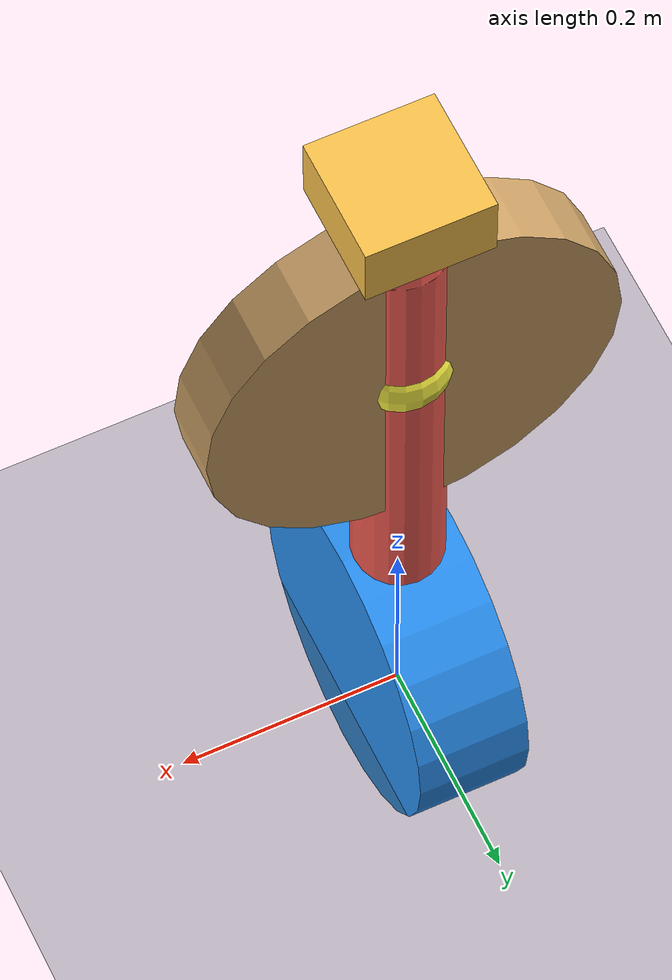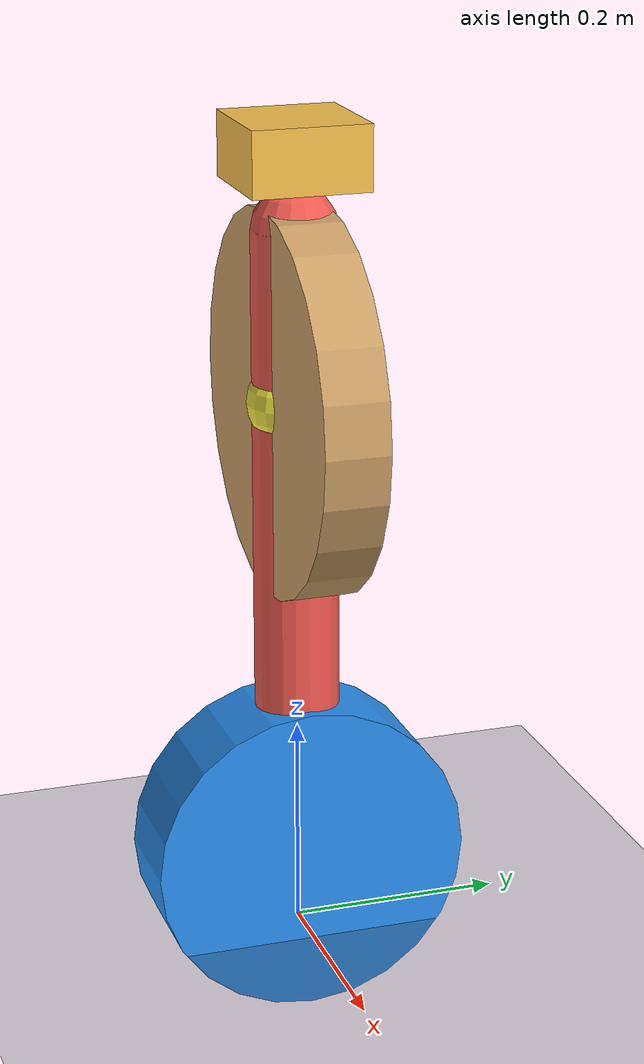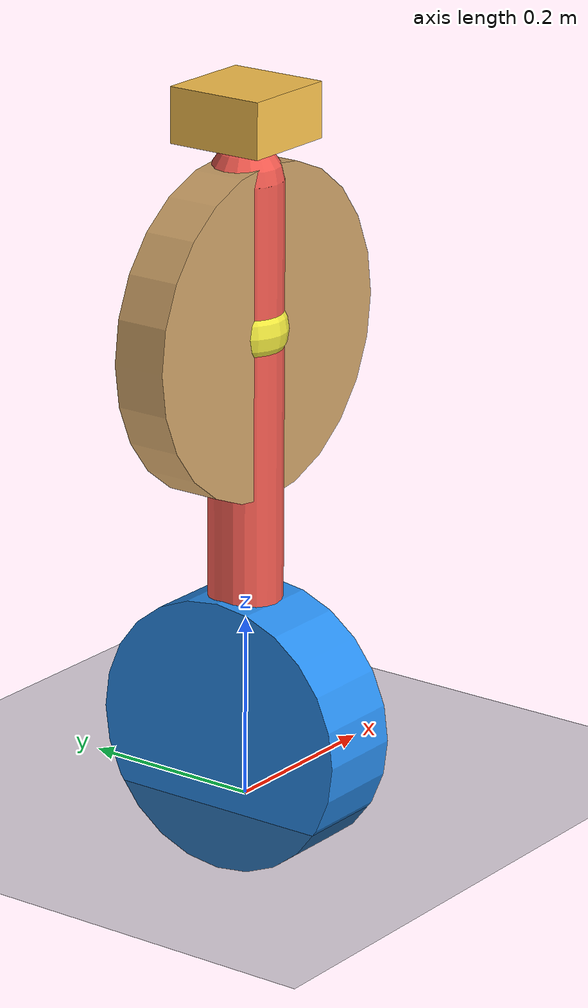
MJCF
<mujoco model="payload_sidequest">
  <compiler angle="radian"/>
  <option timestep="0.002" gravity="0 0 -9.81" integrator="RK4"/>

  <worldbody>
    <light pos="1.5 -2.0 3.0" dir="-0.2 0.3 -1.0" directional="true"/>
    <geom name="ground" type="plane" size="4 4 0.1" rgba="0.20 0.26 0.31 1.0" friction="1.8 0.05 0.001"/>

    <body name="base_x" pos="0 0 0.08">
      <inertial pos="0 0 0" mass="0.01" diaginertia="1e-6 1e-6 1e-6"/>
      <joint name="base_x_slide" type="slide" axis="1 0 0" limited="true" range="-2 2" damping="1.2" armature="0.02"/>

      <body name="base_y" pos="0 0 0">
        <joint name="base_y_slide" type="slide" axis="0 1 0" limited="true" range="-2 2" damping="1.2" armature="0.02"/>

        <geom name="base_geom" type="cylinder" size="0.15 0.05" mass="0.8" quat="0.7071 0 0.7071 0" rgba="0.16 0.56 0.94 1.0"/>

        <body name="stick_pitch_frame" pos="0 0 0.1">
          <inertial pos="0 0 0" mass="0.01" diaginertia="1e-5 1e-5 1e-5"/>
          <joint name="stick_pitch" type="hinge" axis="0 1 0" damping="9.0" armature="0.04" range="-3.14 3.14"/>

          <body name="stick" pos="0 0 0">
            <joint name="stick_roll" type="hinge" axis="1 0 0" damping="11.0" armature="0.04" range="-3.14 3.14"/>
            <geom name="stick_geom" type="capsule" fromto="0 0 0 0 0 0.5" size="0.04" mass="1.0" rgba="0.94 0.35 0.31 1.0"/>

            <body name="wheel" pos="0 0 0.34">
              <joint name="wheel_spin" type="hinge" axis="0 1 0" damping="0.4"/>
              <geom name="wheel_geom" type="cylinder" size="0.18 0.03" mass="0.7" quat="0.7071 0.7071 0 0" rgba="0.80 0.63 0.40 1.0"/>
              <geom name="wheel_hub" type="sphere" size="0.045" mass="0.08" rgba="0.95 0.92 0.25 1.0"/>
            </body>

            <body name="payload" pos="0 0 0.57">
              <inertial pos="0 0 0" mass="__PAYLOAD_MASS__" diaginertia="0.00012 0.00012 0.00012"/>
              <geom name="payload_geom" type="box" size="0.055 0.055 0.03" mass="0" rgba="0.98 0.76 0.30 1.0" friction="1.2 0.02 0.001"/>
            </body>
          </body>
        </body>
      </body>
    </body>
  </worldbody>

  <actuator>
    <motor name="wheel_spin" joint="wheel_spin" ctrlrange="-220 220"/>
    <motor name="base_x_force" joint="base_x_slide" ctrlrange="-160 160"/>
    <motor name="base_y_force" joint="base_y_slide" ctrlrange="-160 160"/>
  </actuator>
</mujoco>
